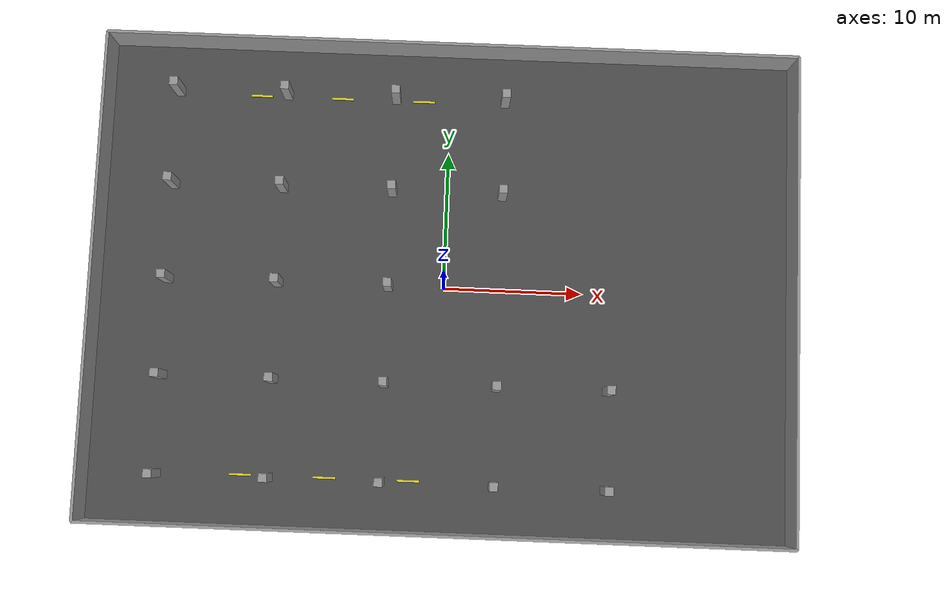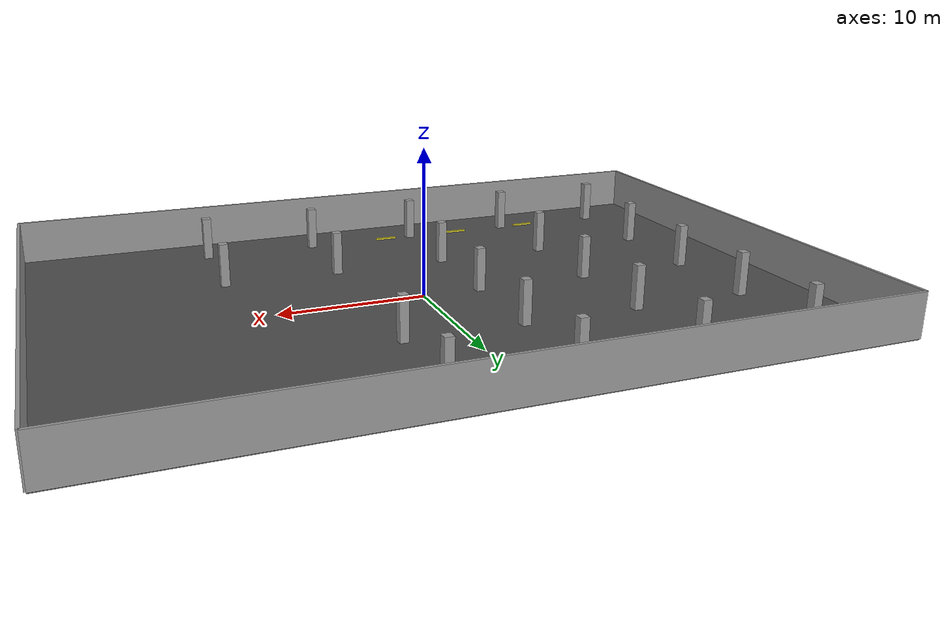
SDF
<sdf version="1.6">
 <world name="parking">
  <include><uri>model://sun</uri></include>
  <model name="floor">
   <static>true</static>
   <link name="link">
    <pose>0 0 -0.05 0 0 0</pose>
    <collision name="c"><geometry><box><size>50 35 0.1</size></box></geometry></collision>
    <visual name="v">
     <geometry><box><size>50 35 0.1</size></box></geometry>
     <material>
      <script><uri>file://media/materials/scripts/gazebo.material</uri><name>Gazebo/DarkGrey</name></script>
     </material>
    </visual>
   </link>
  </model>
  <model name="wall_n">
   <static>true</static>
   <link name="link">
    <pose>0 17.5 1.5 0 0 0</pose>
    <collision name="c"><geometry><box><size>50 0.2 3</size></box></geometry></collision>
    <visual name="v">
     <geometry><box><size>50 0.2 3</size></box></geometry>
     <material>
      <script><uri>file://media/materials/scripts/gazebo.material</uri><name>Gazebo/Grey</name></script>
     </material>
    </visual>
   </link>
  </model>
  <model name="wall_s">
   <static>true</static>
   <link name="link">
    <pose>0 -17.5 1.5 0 0 0</pose>
    <collision name="c"><geometry><box><size>50 0.2 3</size></box></geometry></collision>
    <visual name="v">
     <geometry><box><size>50 0.2 3</size></box></geometry>
     <material>
      <script><uri>file://media/materials/scripts/gazebo.material</uri><name>Gazebo/Grey</name></script>
     </material>
    </visual>
   </link>
  </model>
  <model name="wall_e">
   <static>true</static>
   <link name="link">
    <pose>25 0 1.5 0 0 0</pose>
    <collision name="c"><geometry><box><size>0.2 35 3</size></box></geometry></collision>
    <visual name="v">
     <geometry><box><size>0.2 35 3</size></box></geometry>
     <material>
      <script><uri>file://media/materials/scripts/gazebo.material</uri><name>Gazebo/Grey</name></script>
     </material>
    </visual>
   </link>
  </model>
  <model name="wall_w">
   <static>true</static>
   <link name="link">
    <pose>-25 0 1.5 0 0 0</pose>
    <collision name="c"><geometry><box><size>0.2 35 3</size></box></geometry></collision>
    <visual name="v">
     <geometry><box><size>0.2 35 3</size></box></geometry>
     <material>
      <script><uri>file://media/materials/scripts/gazebo.material</uri><name>Gazebo/Grey</name></script>
     </material>
    </visual>
   </link>
  </model>
  <model name="pillar_1">
   <static>true</static>
   <link name="link">
    <pose>-20 -14 1.5 0 0 0</pose>
    <collision name="c"><geometry><box><size>0.6 0.6 3</size></box></geometry></collision>
    <visual name="v">
     <geometry><box><size>0.6 0.6 3</size></box></geometry>
     <material>
      <script><uri>file://media/materials/scripts/gazebo.material</uri><name>Gazebo/Grey</name></script>
     </material>
    </visual>
   </link>
  </model>
  <model name="pillar_2">
   <static>true</static>
   <link name="link">
    <pose>-20 -7 1.5 0 0 0</pose>
    <collision name="c"><geometry><box><size>0.6 0.6 3</size></box></geometry></collision>
    <visual name="v">
     <geometry><box><size>0.6 0.6 3</size></box></geometry>
     <material>
      <script><uri>file://media/materials/scripts/gazebo.material</uri><name>Gazebo/Grey</name></script>
     </material>
    </visual>
   </link>
  </model>
  <model name="pillar_3">
   <static>true</static>
   <link name="link">
    <pose>-20 0 1.5 0 0 0</pose>
    <collision name="c"><geometry><box><size>0.6 0.6 3</size></box></geometry></collision>
    <visual name="v">
     <geometry><box><size>0.6 0.6 3</size></box></geometry>
     <material>
      <script><uri>file://media/materials/scripts/gazebo.material</uri><name>Gazebo/Grey</name></script>
     </material>
    </visual>
   </link>
  </model>
  <model name="pillar_4">
   <static>true</static>
   <link name="link">
    <pose>-20 7 1.5 0 0 0</pose>
    <collision name="c"><geometry><box><size>0.6 0.6 3</size></box></geometry></collision>
    <visual name="v">
     <geometry><box><size>0.6 0.6 3</size></box></geometry>
     <material>
      <script><uri>file://media/materials/scripts/gazebo.material</uri><name>Gazebo/Grey</name></script>
     </material>
    </visual>
   </link>
  </model>
  <model name="pillar_5">
   <static>true</static>
   <link name="link">
    <pose>-20 14 1.5 0 0 0</pose>
    <collision name="c"><geometry><box><size>0.6 0.6 3</size></box></geometry></collision>
    <visual name="v">
     <geometry><box><size>0.6 0.6 3</size></box></geometry>
     <material>
      <script><uri>file://media/materials/scripts/gazebo.material</uri><name>Gazebo/Grey</name></script>
     </material>
    </visual>
   </link>
  </model>
  <model name="pillar_6">
   <static>true</static>
   <link name="link">
    <pose>-12 -14 1.5 0 0 0</pose>
    <collision name="c"><geometry><box><size>0.6 0.6 3</size></box></geometry></collision>
    <visual name="v">
     <geometry><box><size>0.6 0.6 3</size></box></geometry>
     <material>
      <script><uri>file://media/materials/scripts/gazebo.material</uri><name>Gazebo/Grey</name></script>
     </material>
    </visual>
   </link>
  </model>
  <model name="pillar_7">
   <static>true</static>
   <link name="link">
    <pose>-12 -7 1.5 0 0 0</pose>
    <collision name="c"><geometry><box><size>0.6 0.6 3</size></box></geometry></collision>
    <visual name="v">
     <geometry><box><size>0.6 0.6 3</size></box></geometry>
     <material>
      <script><uri>file://media/materials/scripts/gazebo.material</uri><name>Gazebo/Grey</name></script>
     </material>
    </visual>
   </link>
  </model>
  <model name="pillar_8">
   <static>true</static>
   <link name="link">
    <pose>-12 0 1.5 0 0 0</pose>
    <collision name="c"><geometry><box><size>0.6 0.6 3</size></box></geometry></collision>
    <visual name="v">
     <geometry><box><size>0.6 0.6 3</size></box></geometry>
     <material>
      <script><uri>file://media/materials/scripts/gazebo.material</uri><name>Gazebo/Grey</name></script>
     </material>
    </visual>
   </link>
  </model>
  <model name="pillar_9">
   <static>true</static>
   <link name="link">
    <pose>-12 7 1.5 0 0 0</pose>
    <collision name="c"><geometry><box><size>0.6 0.6 3</size></box></geometry></collision>
    <visual name="v">
     <geometry><box><size>0.6 0.6 3</size></box></geometry>
     <material>
      <script><uri>file://media/materials/scripts/gazebo.material</uri><name>Gazebo/Grey</name></script>
     </material>
    </visual>
   </link>
  </model>
  <model name="pillar_10">
   <static>true</static>
   <link name="link">
    <pose>-12 14 1.5 0 0 0</pose>
    <collision name="c"><geometry><box><size>0.6 0.6 3</size></box></geometry></collision>
    <visual name="v">
     <geometry><box><size>0.6 0.6 3</size></box></geometry>
     <material>
      <script><uri>file://media/materials/scripts/gazebo.material</uri><name>Gazebo/Grey</name></script>
     </material>
    </visual>
   </link>
  </model>
  <model name="pillar_11">
   <static>true</static>
   <link name="link">
    <pose>-4 -14 1.5 0 0 0</pose>
    <collision name="c"><geometry><box><size>0.6 0.6 3</size></box></geometry></collision>
    <visual name="v">
     <geometry><box><size>0.6 0.6 3</size></box></geometry>
     <material>
      <script><uri>file://media/materials/scripts/gazebo.material</uri><name>Gazebo/Grey</name></script>
     </material>
    </visual>
   </link>
  </model>
  <model name="pillar_12">
   <static>true</static>
   <link name="link">
    <pose>-4 -7 1.5 0 0 0</pose>
    <collision name="c"><geometry><box><size>0.6 0.6 3</size></box></geometry></collision>
    <visual name="v">
     <geometry><box><size>0.6 0.6 3</size></box></geometry>
     <material>
      <script><uri>file://media/materials/scripts/gazebo.material</uri><name>Gazebo/Grey</name></script>
     </material>
    </visual>
   </link>
  </model>
  <model name="pillar_13">
   <static>true</static>
   <link name="link">
    <pose>-4 0 1.5 0 0 0</pose>
    <collision name="c"><geometry><box><size>0.6 0.6 3</size></box></geometry></collision>
    <visual name="v">
     <geometry><box><size>0.6 0.6 3</size></box></geometry>
     <material>
      <script><uri>file://media/materials/scripts/gazebo.material</uri><name>Gazebo/Grey</name></script>
     </material>
    </visual>
   </link>
  </model>
  <model name="pillar_14">
   <static>true</static>
   <link name="link">
    <pose>-4 7 1.5 0 0 0</pose>
    <collision name="c"><geometry><box><size>0.6 0.6 3</size></box></geometry></collision>
    <visual name="v">
     <geometry><box><size>0.6 0.6 3</size></box></geometry>
     <material>
      <script><uri>file://media/materials/scripts/gazebo.material</uri><name>Gazebo/Grey</name></script>
     </material>
    </visual>
   </link>
  </model>
  <model name="pillar_15">
   <static>true</static>
   <link name="link">
    <pose>-4 14 1.5 0 0 0</pose>
    <collision name="c"><geometry><box><size>0.6 0.6 3</size></box></geometry></collision>
    <visual name="v">
     <geometry><box><size>0.6 0.6 3</size></box></geometry>
     <material>
      <script><uri>file://media/materials/scripts/gazebo.material</uri><name>Gazebo/Grey</name></script>
     </material>
    </visual>
   </link>
  </model>
  <model name="pillar_16">
   <static>true</static>
   <link name="link">
    <pose>4 -14 1.5 0 0 0</pose>
    <collision name="c"><geometry><box><size>0.6 0.6 3</size></box></geometry></collision>
    <visual name="v">
     <geometry><box><size>0.6 0.6 3</size></box></geometry>
     <material>
      <script><uri>file://media/materials/scripts/gazebo.material</uri><name>Gazebo/Grey</name></script>
     </material>
    </visual>
   </link>
  </model>
  <model name="pillar_17">
   <static>true</static>
   <link name="link">
    <pose>4 -7 1.5 0 0 0</pose>
    <collision name="c"><geometry><box><size>0.6 0.6 3</size></box></geometry></collision>
    <visual name="v">
     <geometry><box><size>0.6 0.6 3</size></box></geometry>
     <material>
      <script><uri>file://media/materials/scripts/gazebo.material</uri><name>Gazebo/Grey</name></script>
     </material>
    </visual>
   </link>
  </model>
  <model name="pillar_18">
   <static>true</static>
   <link name="link">
    <pose>4 7 1.5 0 0 0</pose>
    <collision name="c"><geometry><box><size>0.6 0.6 3</size></box></geometry></collision>
    <visual name="v">
     <geometry><box><size>0.6 0.6 3</size></box></geometry>
     <material>
      <script><uri>file://media/materials/scripts/gazebo.material</uri><name>Gazebo/Grey</name></script>
     </material>
    </visual>
   </link>
  </model>
  <model name="pillar_19">
   <static>true</static>
   <link name="link">
    <pose>4 14 1.5 0 0 0</pose>
    <collision name="c"><geometry><box><size>0.6 0.6 3</size></box></geometry></collision>
    <visual name="v">
     <geometry><box><size>0.6 0.6 3</size></box></geometry>
     <material>
      <script><uri>file://media/materials/scripts/gazebo.material</uri><name>Gazebo/Grey</name></script>
     </material>
    </visual>
   </link>
  </model>
  <model name="pillar_20">
   <static>true</static>
   <link name="link">
    <pose>12 -14 1.5 0 0 0</pose>
    <collision name="c"><geometry><box><size>0.6 0.6 3</size></box></geometry></collision>
    <visual name="v">
     <geometry><box><size>0.6 0.6 3</size></box></geometry>
     <material>
      <script><uri>file://media/materials/scripts/gazebo.material</uri><name>Gazebo/Grey</name></script>
     </material>
    </visual>
   </link>
  </model>
  <model name="pillar_21">
   <static>true</static>
   <link name="link">
    <pose>12 -7 1.5 0 0 0</pose>
    <collision name="c"><geometry><box><size>0.6 0.6 3</size></box></geometry></collision>
    <visual name="v">
     <geometry><box><size>0.6 0.6 3</size></box></geometry>
     <material>
      <script><uri>file://media/materials/scripts/gazebo.material</uri><name>Gazebo/Grey</name></script>
     </material>
    </visual>
   </link>
  </model>
  <model name="enh_stop_0">
   <static>true</static>
   <pose>-14 -13.9 0.06 0 0 0</pose>
   <link name="link">
    <collision name="c"><geometry><box><size>1.6 0.15 0.12</size></box></geometry></collision>
    <visual name="v">
     <geometry><box><size>1.6 0.15 0.12</size></box></geometry>
     <material>
      <script><uri>file://media/materials/scripts/gazebo.material</uri><name>Gazebo/Yellow</name></script>
     </material>
    </visual>
   </link>
  </model>
  <model name="enh_stop_top_0">
   <static>true</static>
   <pose>-14 13.9 0.06 0 0 0</pose>
   <link name="link">
    <collision name="c"><geometry><box><size>1.6 0.15 0.12</size></box></geometry></collision>
    <visual name="v">
     <geometry><box><size>1.6 0.15 0.12</size></box></geometry>
     <material>
      <script><uri>file://media/materials/scripts/gazebo.material</uri><name>Gazebo/Yellow</name></script>
     </material>
    </visual>
   </link>
  </model>
  <model name="enh_stop_1">
   <static>true</static>
   <pose>-8 -13.9 0.06 0 0 0</pose>
   <link name="link">
    <collision name="c"><geometry><box><size>1.6 0.15 0.12</size></box></geometry></collision>
    <visual name="v">
     <geometry><box><size>1.6 0.15 0.12</size></box></geometry>
     <material>
      <script><uri>file://media/materials/scripts/gazebo.material</uri><name>Gazebo/Yellow</name></script>
     </material>
    </visual>
   </link>
  </model>
  <model name="enh_stop_top_1">
   <static>true</static>
   <pose>-8 13.9 0.06 0 0 0</pose>
   <link name="link">
    <collision name="c"><geometry><box><size>1.6 0.15 0.12</size></box></geometry></collision>
    <visual name="v">
     <geometry><box><size>1.6 0.15 0.12</size></box></geometry>
     <material>
      <script><uri>file://media/materials/scripts/gazebo.material</uri><name>Gazebo/Yellow</name></script>
     </material>
    </visual>
   </link>
  </model>
  <model name="enh_stop_2">
   <static>true</static>
   <pose>-2 -13.9 0.06 0 0 0</pose>
   <link name="link">
    <collision name="c"><geometry><box><size>1.6 0.15 0.12</size></box></geometry></collision>
    <visual name="v">
     <geometry><box><size>1.6 0.15 0.12</size></box></geometry>
     <material>
      <script><uri>file://media/materials/scripts/gazebo.material</uri><name>Gazebo/Yellow</name></script>
     </material>
    </visual>
   </link>
  </model>
  <model name="enh_stop_top_2">
   <static>true</static>
   <pose>-2 13.9 0.06 0 0 0</pose>
   <link name="link">
    <collision name="c"><geometry><box><size>1.6 0.15 0.12</size></box></geometry></collision>
    <visual name="v">
     <geometry><box><size>1.6 0.15 0.12</size></box></geometry>
     <material>
      <script><uri>file://media/materials/scripts/gazebo.material</uri><name>Gazebo/Yellow</name></script>
     </material>
    </visual>
   </link>
  </model>
 </world>
</sdf>
